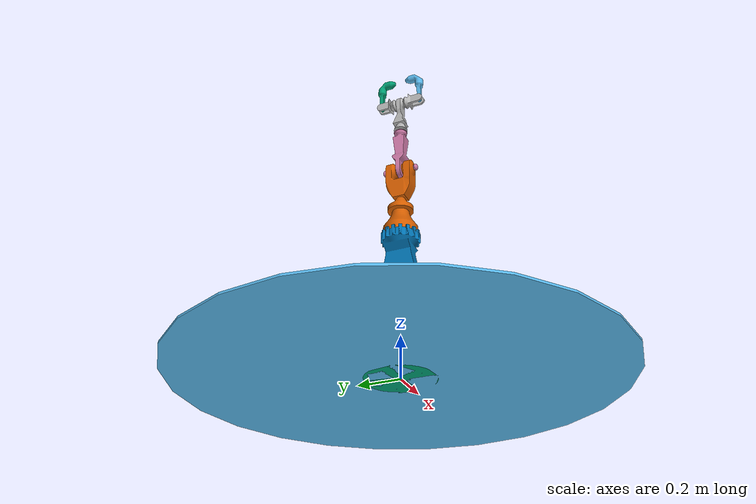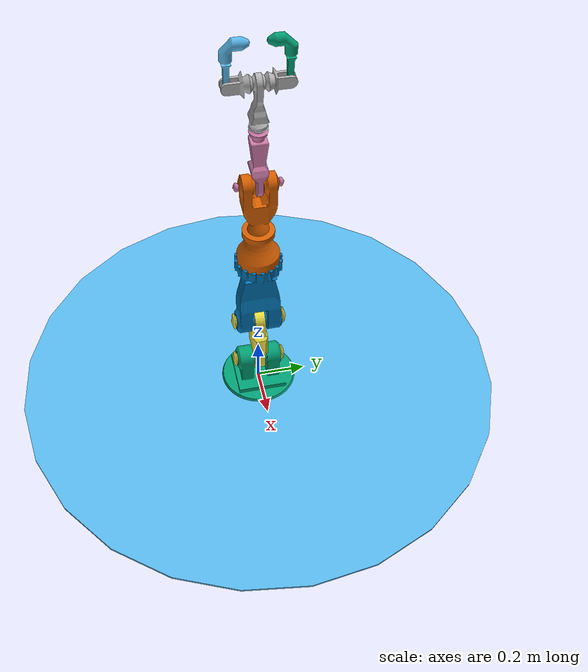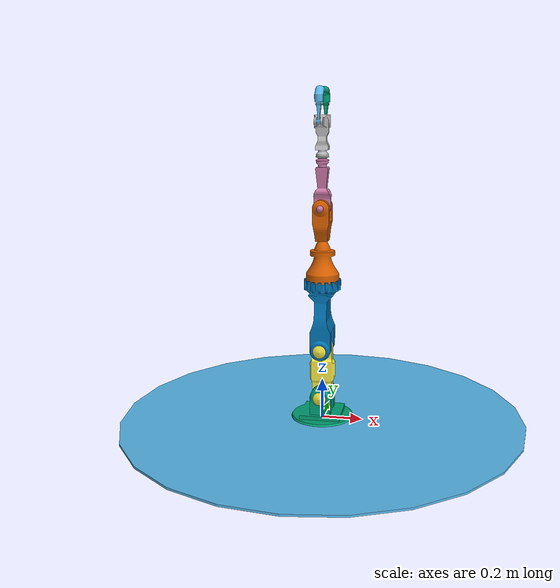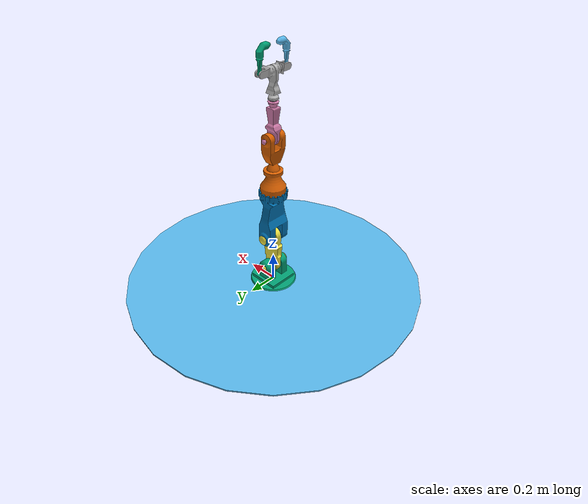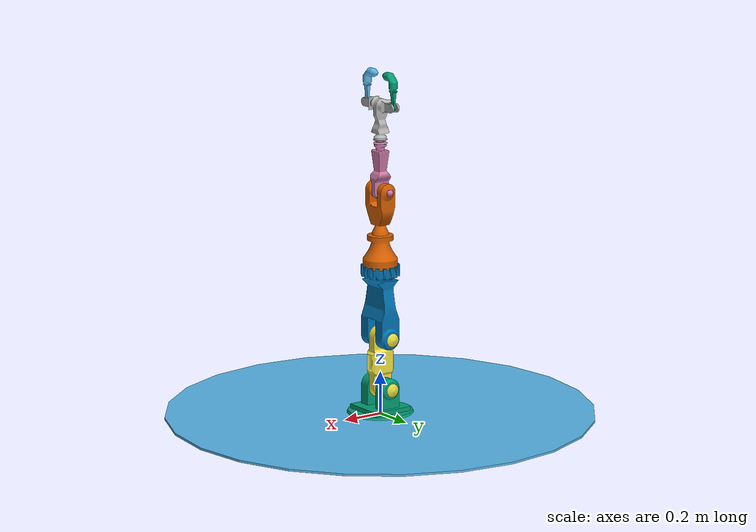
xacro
<?xml version="1.0"?>
<robot xmlns:xacro="http://www.ros.org/wiki/xacro" name="marco">
  <xacro:property name="L1" value="0.13"/>
  <xacro:property name="L2" value="0.24"/>
  <xacro:property name="L3" value="0.33"/>
  <xacro:property name="L4" value="0.36"/>
  <xacro:property name="L5" value="0.23"/>
  <xacro:property name="L6" value="0.31"/>
  <xacro:property name="rho" value="0.5"/>
  <xacro:property name="PI" value="3.14159265358979"/>

  <gazebo>
    <plugin name="gazebo_ros_control" filename="libgazebo_ros_control.so">
      <robotNamespace>/marco</robotNamespace>
    </plugin>
  </gazebo>

  <gazebo reference="">
    <self_collide>1</self_collide>
  </gazebo>

  <link name="world"/>

  <link name="link0">
    <visual>
      <geometry>
        <cylinder length="0.01" radius="1.0"/>
      </geometry>
      <origin xyz="0 0 0.005" rpy="0 0 0"/>
    </visual>
    <inertial>
      <mass value="1.0" />
      <inertia ixx="1.0" ixy="0.0" ixz="0.0" iyy="1.0" iyz="0.0" izz="1.0" />
    </inertial>
  </link>

  <link name="link1">
    <visual>
      <geometry>
        <mesh filename="package://marco_description/models/marco/meshes/link1.stl" scale="0.1 0.1 0.1"/>
      </geometry>
      <origin xyz="0 0 0" rpy="0 0 ${PI / 2}"/>
    </visual>
    <collision>
      <geometry>
        <cylinder length="${L1-0.1}" radius="0.05"/>
      </geometry>
      <origin xyz="0 0 ${L1/2}" rpy="0 0 0"/>
    </collision>
    <inertial>
      <origin xyz="0 0 0" rpy="0 0 0"/>
      <mass value="${rho*L1}"/>
      <inertia ixx="${(rho*L1*L1*L1)/12}"  ixy="0"  ixz="0" iyy="0" iyz="0" izz="${(rho*L1*L1*L1)/3}" />
    </inertial>
  </link>

  <link name="link2">
    <visual>
      <geometry>
        <mesh filename="package://marco_description/models/marco/meshes/link2.stl" scale="0.1 0.1 0.1"/>
      </geometry>
      <origin xyz="0 0 0" rpy="0 0 ${PI / 2}"/>
    </visual>
    <collision>
      <geometry>
        <cylinder length="${L2-0.1}" radius="0.05"/>
      </geometry>
      <origin xyz="0 0 ${L2/2}" rpy="0 0 0"/>
    </collision>
    <inertial>
      <origin xyz="0 0 0" rpy="0 0 0"/>
      <mass value="${rho*L2}"/>
      <inertia ixx="${(rho*L2*L2*L2)/12}"  ixy="0"  ixz="0" iyy="0" iyz="0" izz="${(rho*L2*L2*L2)/3}" />
    </inertial>
  </link>

  <link name="link3">
    <visual>
      <geometry>
        <mesh filename="package://marco_description/models/marco/meshes/link3.stl" scale="0.1 0.1 0.1"/>
      </geometry>
      <origin xyz="0 0 0" rpy="0 0 ${PI / 2}"/>
    </visual>
    <collision>
      <geometry>
        <cylinder length="${L3-0.1}" radius="0.05"/>
      </geometry>
      <origin xyz="0 0 ${L3/2}" rpy="0 0 0"/>
    </collision>
    <inertial>
      <origin xyz="0 0 0" rpy="0 0 0"/>
      <mass value="${rho*L3}"/>
      <inertia ixx="${(rho*L3*L3*L3)/12}"  ixy="0"  ixz="0" iyy="0" iyz="0" izz="${(rho*L3*L3*L3)/3}" />
   </inertial>
  </link>

  <link name="link4">
    <visual>
      <geometry>
        <mesh filename="package://marco_description/models/marco/meshes/link4.stl" scale="0.1 0.1 0.1"/>
      </geometry>
      <origin xyz="0 0 0" rpy="0 0 ${PI / 2}"/>
    </visual>
    <collision>
      <geometry>
        <cylinder length="${L4-0.1}" radius="0.05"/>
      </geometry>
      <origin xyz="0 0 ${L4/2}" rpy="0 0 0"/>
    </collision>
    <inertial>
      <origin xyz="0 0 0" rpy="0 0 0"/>
      <mass value="${rho*L4}"/>
      <inertia ixx="${(rho*L4*L4*L4)/12}"  ixy="0"  ixz="0" iyy="0" iyz="0" izz="${(rho*L4*L4*L4)/3}" />
    </inertial>
  </link>

  <link name="link5">
    <visual>
      <geometry>
        <mesh filename="package://marco_description/models/marco/meshes/link5.stl" scale="0.1 0.1 0.1"/>
      </geometry>
      <origin xyz="0 0 0" rpy="0 0 ${PI / 2}"/>
    </visual>
    <collision>
      <geometry>
        <cylinder length="${L5-0.1}" radius="0.05"/>
      </geometry>
      <origin xyz="0 0 ${L5/2}" rpy="0 0 0"/>
    </collision>
    <inertial>
      <origin xyz="0 0 0" rpy="0 0 0"/>
      <mass value="${rho*L5}"/>
      <inertia ixx="${(rho*L5*L5*L5)/12}"  ixy="0"  ixz="0" iyy="0" iyz="0" izz="${(rho*L5*L5*L5)/3}" />
    </inertial>
  </link>

  <link name="link6">
    <visual>
      <geometry>
        <mesh filename="package://marco_description/models/marco/meshes/link6.stl" scale="0.1 0.1 0.1"/>
      </geometry>
      <origin xyz="0 0 0" rpy="0 0 ${PI / 2}"/>
    </visual>
    <collision>
      <geometry>
        <cylinder length="${L6-0.1}" radius="0.05"/>
      </geometry>
      <origin xyz="0 0 ${L6/2}" rpy="0 0 0"/>
    </collision>
    <inertial>
      <origin xyz="0 0 0" rpy="0 0 0"/>
      <mass value="${rho*L6}"/>
      <inertia ixx="${(rho*L6*L6*L6)/3}"  ixy="0"  ixz="0" iyy="0" iyz="0" izz="${(rho*L6*L6*L6)/3}" />
    </inertial>
  </link>

  <link name="gripper_tip"/>

  <link name="gripper_a">
    <visual>
      <geometry>
        <mesh filename="package://marco_description/models/marco/meshes/gripper_a.stl" scale="0.1 0.1 0.1"/>
      </geometry>
      <origin xyz="0 0 0" rpy="0 0 ${PI / 2}"/>
    </visual>
    <inertial>
      <mass value="1.0" />
      <inertia ixx="1.0" ixy="0.0" ixz="0.0" iyy="1.0" iyz="0.0" izz="1.0" />
    </inertial>
  </link>

  <link name="gripper_b">
    <visual>
      <geometry>
        <mesh filename="package://marco_description/models/marco/meshes/gripper_b.stl" scale="0.1 0.1 0.1"/>
      </geometry>
      <origin xyz="0 0 0" rpy="0 0 ${PI / 2}"/>
    </visual>
    <inertial>
      <mass value="1.0" />
      <inertia ixx="1.0" ixy="0.0" ixz="0.0" iyy="1.0" iyz="0.0" izz="1.0" />
    </inertial>
  </link>

  <joint name="fixed" type="fixed">
    <origin xyz="0 0 0" rpy="0 0 0"/>
    <parent link="world"/>
    <child link="link0"/>
  </joint>

  <joint name="joint1" type="continuous">
    <origin xyz="0 0 0" rpy="0 0 0"/>
    <axis xyz="0 0 1" />
    <dynamics damping="0.5"/>
    <parent link="link0"/>
    <child link="link1"/>
  </joint>

  <joint name="joint2" type="continuous">
    <origin xyz="0 0 ${L1}" rpy="0 0 0"/>
    <axis xyz="0 -1 0" />
    <dynamics damping="0.5"/>
    <parent link="link1"/>
    <child link="link2"/>
  </joint>

  <joint name="joint3" type="continuous">
    <origin xyz="0 0 ${L2}" rpy="0 0 0"/>
    <axis xyz="0 -1 0" />
    <dynamics damping="0.5"/>
    <parent link="link2"/>
    <child link="link3"/>
  </joint>

  <joint name="joint4" type="continuous">
    <origin xyz="0 0 ${L3}" rpy="0 0 0"/>
    <axis xyz="0 0 1" />
    <dynamics damping="0.5"/>
    <parent link="link3"/>
    <child link="link4"/>
  </joint>

  <joint name="joint5" type="continuous">
    <origin xyz="0 0 ${L4}" rpy="0 0 0"/>
    <axis xyz="0 -1 0" />
    <dynamics damping="0.5"/>
    <parent link="link4"/>
    <child link="link5" />
  </joint>

  <joint name="joint6" type="continuous">
    <origin xyz="0 0 ${L5}" rpy="0 0 0"/>
    <axis xyz="0 0 1" />
    <dynamics damping="0.5"/>
    <parent link="link5"/>
    <child link="link6"/>
  </joint>

  <joint name="gripper_fixed" type="fixed">
    <origin xyz="0 0 ${L6}" rpy="0 0 0"/>
    <parent link="link6"/>
    <child link="gripper_tip"/>
  </joint>

  <joint name="joint_gripper_a" type="fixed">
    <origin xyz="0 -0.1 0.17" rpy="0 0 0"/>
    <parent link="link6"/>
    <child link="gripper_a"/>
  </joint>

  <joint name="joint_gripper_b" type="fixed">
    <origin xyz="0 0.1 0.17" rpy="0 0 0"/>
    <parent link="link6"/>
    <child link="gripper_b"/>
  </joint>

  <transmission name="tran1">
    <type>transmission_interface/SimpleTransmission</type>
    <joint name="joint1">
      <hardwareInterface>hardware_interface/EffortJointInterface</hardwareInterface>
    </joint>
    <actuator name="motor1">
      <hardwareInterface>hardware_interface/EffortJointInterface</hardwareInterface>
      <mechanicalReduction>1</mechanicalReduction>
    </actuator>
  </transmission>

  <transmission name="tran2">
    <type>transmission_interface/SimpleTransmission</type>
    <joint name="joint2">
      <hardwareInterface>hardware_interface/EffortJointInterface</hardwareInterface>
    </joint>
    <actuator name="motor2">
      <hardwareInterface>hardware_interface/EffortJointInterface</hardwareInterface>
      <mechanicalReduction>1</mechanicalReduction>
    </actuator>
  </transmission>

  <transmission name="tran3">
    <type>transmission_interface/SimpleTransmission</type>
    <joint name="joint3">
      <hardwareInterface>hardware_interface/EffortJointInterface</hardwareInterface>
    </joint>
    <actuator name="motor3">
      <hardwareInterface>hardware_interface/EffortJointInterface</hardwareInterface>
      <mechanicalReduction>1</mechanicalReduction>
    </actuator>
  </transmission>

  <transmission name="tran4">
    <type>transmission_interface/SimpleTransmission</type>
    <joint name="joint4">
      <hardwareInterface>hardware_interface/EffortJointInterface</hardwareInterface>
    </joint>
    <actuator name="motor4">
      <hardwareInterface>hardware_interface/EffortJointInterface</hardwareInterface>
      <mechanicalReduction>1</mechanicalReduction>
    </actuator>
  </transmission>

  <transmission name="tran5">
    <type>transmission_interface/SimpleTransmission</type>
    <joint name="joint5">
      <hardwareInterface>hardware_interface/EffortJointInterface</hardwareInterface>
    </joint>
    <actuator name="motor5">
      <hardwareInterface>hardware_interface/EffortJointInterface</hardwareInterface>
      <mechanicalReduction>1</mechanicalReduction>
    </actuator>
  </transmission>

  <transmission name="tran6">
    <type>transmission_interface/SimpleTransmission</type>
    <joint name="joint6">
      <hardwareInterface>hardware_interface/EffortJointInterface</hardwareInterface>
    </joint>
    <actuator name="motor6">
      <hardwareInterface>hardware_interface/EffortJointInterface</hardwareInterface>
      <mechanicalReduction>1</mechanicalReduction>
    </actuator>
  </transmission>
</robot>
